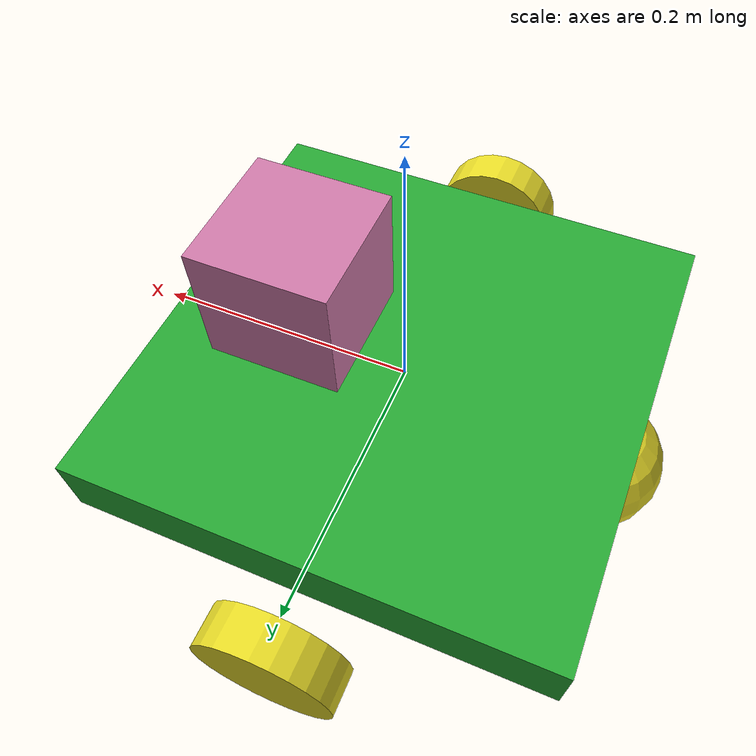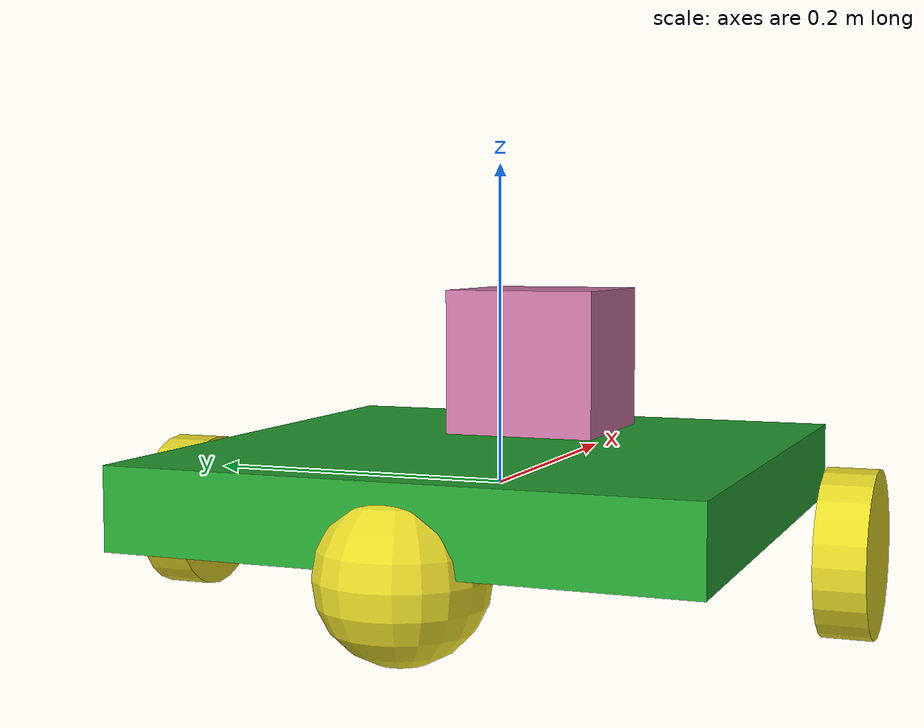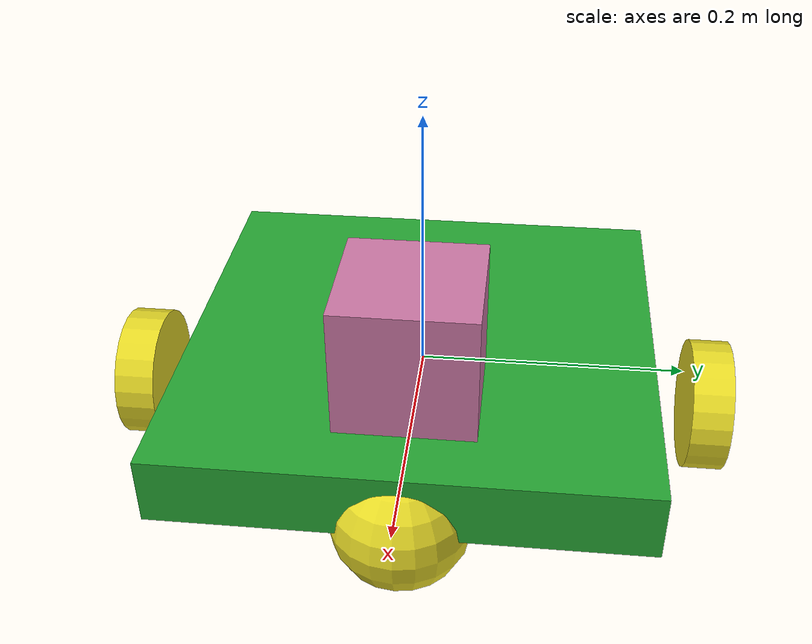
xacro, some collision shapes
<?xml version="1.0"?>
<robot xmlns:xacro="http://www.ros.org/wiki/xacro" name="my_diffbot">

<!-- Here we define the model parameters -->
    <!-- Geometry -->
    <xacro:property name="base_link_width" value="0.35"/>
    <xacro:property name="base_link_length" value="0.35"/>
    <xacro:property name="base_link_height" value="0.05"/>

    <xacro:property name="wheel_link_length" value="0.03"/>
    <xacro:property name="wheel_link_radius" value="0.05"/>

    <xacro:property name="caster_link_radius" value="0.05"/>

    <!-- Pi Constant -->
    <xacro:property name="PI" value="3.14159265"/>

    <!-- Material density -->

    <!-- Mass -->
    <xacro:property name="base_link_mass" value="10.0"/>
    <xacro:property name="wheel_link_mass" value="0.3"/>
    <xacro:property name="caster_link_mass" value="0.3"/>

<!-- Here we define the model -->
    <!-- DUMMY_LINK is used for Gazebo => Gazebo will complain if missing -->
    <!-- FOR REAL ROBOT, WE DONT NEED "DUMMYLINK" -->

    <!-- Define base_footprint link -->
    <link name="base_footprint">
        <!-- Define visual for base_footprint (optional) -->
        <visual>
            <geometry>
                <!-- You can use any geometry you prefer, simply use a small sphere for visualization -->
                <sphere radius="0.01"/>
            </geometry>
            <origin xyz="0.0 0.0 0.0" rpy="0.0 0.0 0.0"/>
            <material name="blue"/>
        </visual>
        <collision>
            <geometry>
                <!-- Match the visual geometry for collision purposes -->
                <sphere radius="0.01"/>
            </geometry>
            <origin xyz="0.0 0.0 0.0" rpy="0.0 0.0 0.0"/>
        </collision>
    </link>

    <!-- Define a fixed joint connecting base_footprint to base_link -->
    <joint name="base_footprint_joint" type="fixed">
        <parent link="base_footprint"/>
        <child link="base_link"/>
        <origin xyz="0.0 0.0 0.0" rpy="0.0 0.0 0.0"/>
    </joint>

    <!-- Define base_link -->
    <!--Actual body/chassis of the robot-->
    <link name="base_link">
        <visual>
            <geometry>
                <box size="${base_link_width} ${base_link_length} ${base_link_height}"/>
            </geometry>
            <origin xyz="0.0 0.0 0.0" rpy="0.0 0.0 0.0"/>
            <material name="green"/>
        </visual>

        <!-- This is the main factors to simulate the robot's collision (va chamj) -->
        <collision>
            <geometry>
                <box size="${base_link_width} ${base_link_length} ${base_link_height}"/>
            </geometry>
            <origin xyz="0.0 0.0 0.0" rpy="0.0 0.0 0.0"/>
        </collision>

        <inertial>
            <!-- mass in kg -->
            <mass value="${base_link_mass}"/>
            <origin xyz="0.0 0.0 0.0"/>
            <!-- Moment of inertia tensor (Momen quans tinhs)-->
            <inertia ixx="0.1" ixy="0.0" ixz="0.0" iyy="0.1" iyz="0.0" izz="0.1"/>
        </inertial>
    </link>

    <!-- Define left_wheel_joint -->
    <joint name="left_wheel_joint" type="continuous">
        <parent link="base_link"/>
        <child link="left_wheel_link"/>
        <origin xyz="0.0 0.22 -0.03" rpy="-1.57 0.0 0.0"/>
        <axis xyz="0.0 0.0 1.0"/>
    </joint>

    <!-- Define left_wheel_link -->
    <link name="left_wheel_link">
        <visual>
            <geometry>
                <cylinder radius="${wheel_link_radius}" length="${wheel_link_length}"/>
            </geometry>
            <origin xyz="0.0 0.0 0.0" rpy="0 0.0 0.0"/>
            <material name="yellow"/>
        </visual>

        <collision>
            <geometry>
                <cylinder radius="${wheel_link_radius}" length="${wheel_link_length}"/>
            </geometry>
            <origin xyz="0.0 0.0 0.0" rpy="0 0.0 0.0"/>
        </collision>

        <inertial>
            <mass value="${wheel_link_mass}"/>
            <origin xyz="0.0 0.0 0.0"/>
            <inertia ixx="0.1" ixy="0.0" ixz="0.0" iyy="0.1" iyz="0.0" izz="0.1"/>
        </inertial>
    </link>

    <!-- Define right_wheel_joint -->
    <joint name="right_wheel_joint" type="continuous">
        <parent link="base_link"/>
        <child link="right_wheel_link"/>
        <origin xyz="0.0 -0.22 -0.03" rpy="1.57 0.0 0.0"/>
        <axis xyz="0.0 0.0 -1.0"/>
    </joint>

    <!-- Define right_wheel_link -->
    <link name="right_wheel_link">
        <visual>
            <geometry>
                <cylinder radius="${wheel_link_radius}" length="${wheel_link_length}"/>
            </geometry>
            <origin xyz="0.0 0.0 0.0" rpy="0 0.0 0.0"/>
            <material name="yellow"/>
        </visual>

        <collision>
            <geometry>
                <cylinder radius="${wheel_link_radius}" length="${wheel_link_length}"/>
            </geometry>
            <origin xyz="0.0 0.0 0.0" rpy="0 0.0 0.0"/>
        </collision>

        <inertial>
            <mass value="${wheel_link_mass}"/>
            <origin xyz="0.0 0.0 0.0"/>
            <inertia ixx="0.1" ixy="0.0" ixz="0.0" iyy="0.1" iyz="0.0" izz="0.1"/>
        </inertial>
    </link>

    <!-- Define caster_joint_1 -->
    <joint name="caster_joint_1" type="fixed">
        <parent link="base_link"/>
        <child link="caster_link_1"/>
        <origin xyz="0.15 0.0 -0.03"/>
    </joint>

    <!-- Define caster_link_1 -->
    <link name="caster_link_1">
        <visual>
            <geometry>
                <sphere radius="${caster_link_radius}"/>
            </geometry>
            <origin xyz="0.0 0.0 0.0"/>
            <material name="yellow"/>
        </visual>

        <collision>
            <geometry>
                <sphere radius="${caster_link_radius}"/>
            </geometry>
            <origin xyz="0.0 0.0 0.0"/>
        </collision>

        <inertial>
            <mass value="${caster_link_mass}"/>
            <origin xyz="0.0 0.0 0.0"/>
            <inertia ixx="1e-6" ixy="0" ixz="0" iyy="1e-6" iyz="0" izz="1e-6"/>
        </inertial>
    </link>

    <!-- Define caster_joint_2 -->
    <joint name="caster_joint_2" type="fixed">
        <parent link="base_link"/>
        <child link="caster_link_2"/>
        <origin xyz="-0.15 0.0 -0.03"/>
    </joint>

    <!-- Define caster_link_2 -->
    <link name="caster_link_2">
        <visual>
            <geometry>
                <sphere radius="${caster_link_radius}"/>
            </geometry>
            <origin xyz="0.0 0.0 0.0"/>
            <material name="yellow"/>
        </visual>

        <collision>
            <geometry>
                <sphere radius="${caster_link_radius}"/>
            </geometry>
            <origin xyz="0.0 0.0 0.0"/>
        </collision>

        <inertial>
            <mass value="${caster_link_mass}"/>
            <origin xyz="0.0 0.0 0.0"/>
            <inertia ixx="1e-6" ixy="0" ixz="0" iyy="1e-6" iyz="0" izz="1e-6"/>
        </inertial>
    </link>

    <!-- LIDAR -->
    <joint name="lidar_joint" type="fixed">
        <parent link="base_link"/>
        <child link="laser"/>
        <axis xyz="0 1 0" />
        <origin xyz="0.08 0 0.07" rpy="0 0 0"/>
    </joint>

    <link name="laser">
        <visual>
            <geometry>
                <mesh filename="package://robot_model_pkg/meshes/Hieuneee.dae"/>
            </geometry>
        </visual>

        <collision>
            <geometry>
                <box size="0.1 0.1 0.1"/>
            </geometry>
            <origin xyz="0 0 0" rpy="0 0 0"/>
        </collision>

        <inertial>
            <mass value="1e-5" />
            <origin xyz="0 0 0" rpy="0 0 0"/>
            <inertia ixx="1e-6" ixy="0" ixz="0" iyy="1e-6" iyz="0" izz="1e-6" />
        </inertial>
    </link>

<!-- USE FOR CONTROLLING ROBOT -->
    <!-- Transmission -->
    <transmission name="trans_left">
        <type>transmission_interface/SimpleTransmission</type>
        <joint name="left_wheel_joint">
            <hardwareInterface>hardware_interface/VelocityJointInterface</hardwareInterface>
        </joint>
        <actuator name="motor_left">
            <hardwareInterface>hardware_interface/VelocityJointInterface</hardwareInterface>
            <mechanicalReduction>1</mechanicalReduction>
        </actuator>
    </transmission>

    <transmission name="trans_right">
        <type>transmission_interface/SimpleTransmission</type>
        <joint name="right_wheel_joint">
            <hardwareInterface>hardware_interface/VelocityJointInterface</hardwareInterface>
        </joint>
        <actuator name="motor_right">
            <hardwareInterface>hardware_interface/VelocityJointInterface</hardwareInterface>
            <mechanicalReduction>1</mechanicalReduction>
        </actuator>
    </transmission>

</robot>
